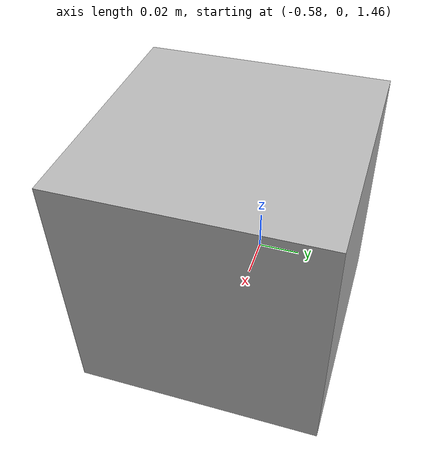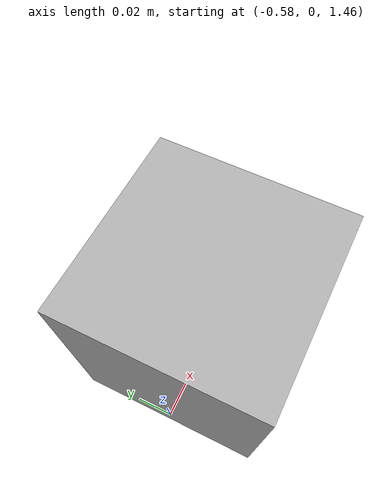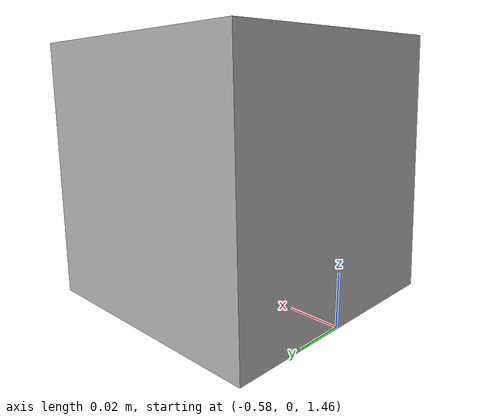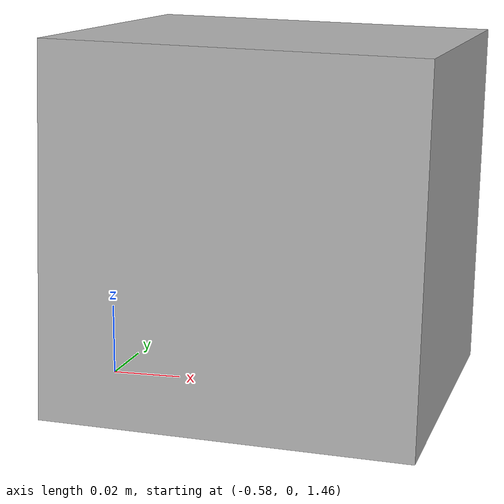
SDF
<?xml version="1.0"?>
<sdf version='1.7'>
    <model name='camera'>
      <static>true</static>
       <pose>-0.530772 0 1.510000 0 1.6 0</pose>
      <link name='link'>
        <visual name='visual'>
          <geometry>
            <box>
              <size>0.1 0.1 0.1</size>
            </box>
          </geometry>
        </visual>
        <sensor name='my_camera' type='camera'>
          <camera>
            <horizontal_fov>1.047</horizontal_fov>
            <image>
              <width>1920</width>
              <height>1080</height>
            </image>
            <clip>
              <near>0.1</near>
              <far>100</far>
            </clip>
          </camera>
          <plugin name="camera_controller" filename="libgazebo_ros_camera.so">
        <alwaysOn>true</alwaysOn>
        <updateRate>0.0</updateRate>
        <cameraName>my_camera</cameraName>
        <imageTopicName>image_raw</imageTopicName>
        <cameraInfoTopicName>camera_info</cameraInfoTopicName>
        <frameName>camera</frameName>
        <hackBaseline>0.07</hackBaseline>
        <distortionK1>0.0</distortionK1>
        <distortionK2>0.0</distortionK2>
        <distortionK3>0.0</distortionK3>
        <distortionT1>0.0</distortionT1>
        <distortionT2>0.0</distortionT2>
      </plugin>
          <always_on>1</always_on>
          <update_rate>30</update_rate>
           <visualize>true</visualize>
        </sensor>
      </link>
    </model>
</sdf>
